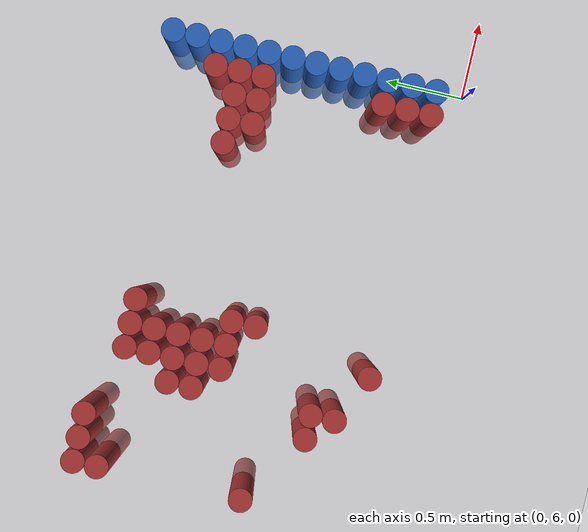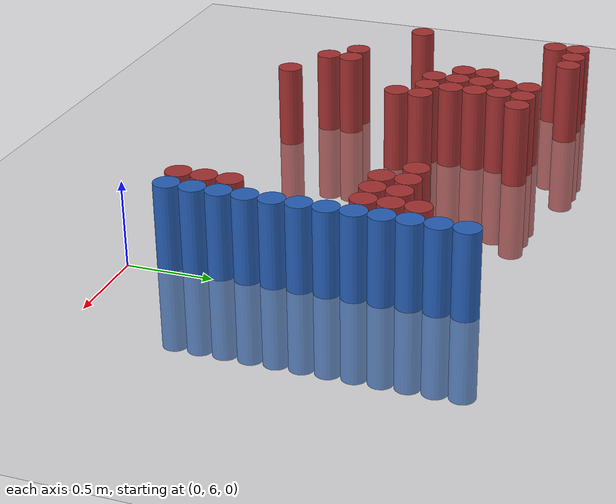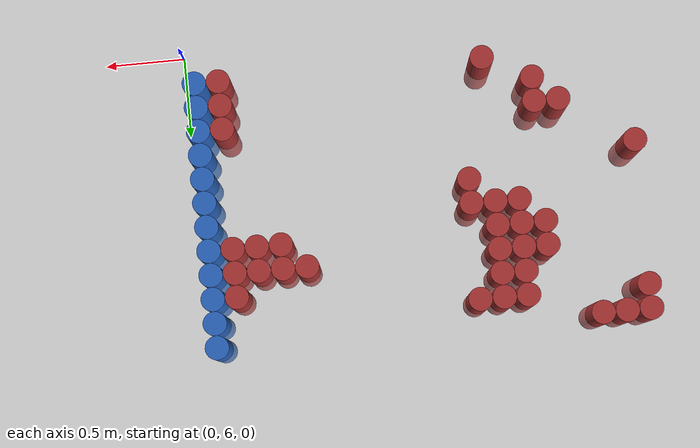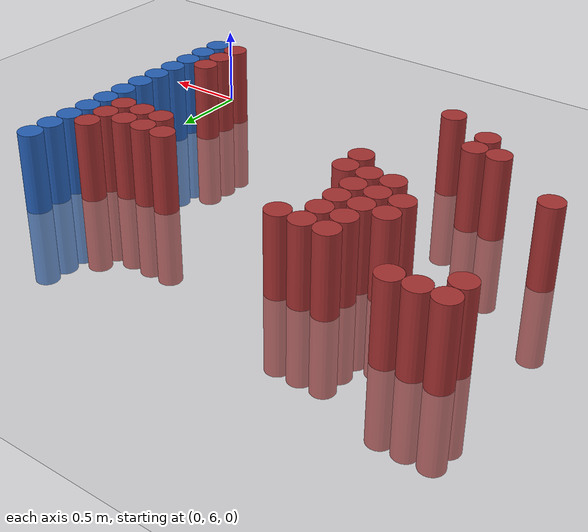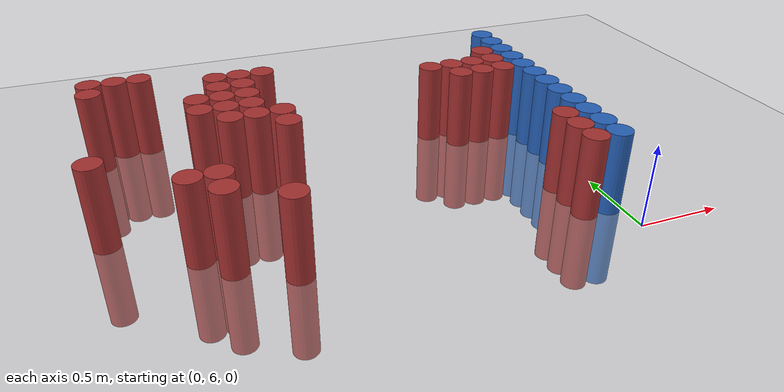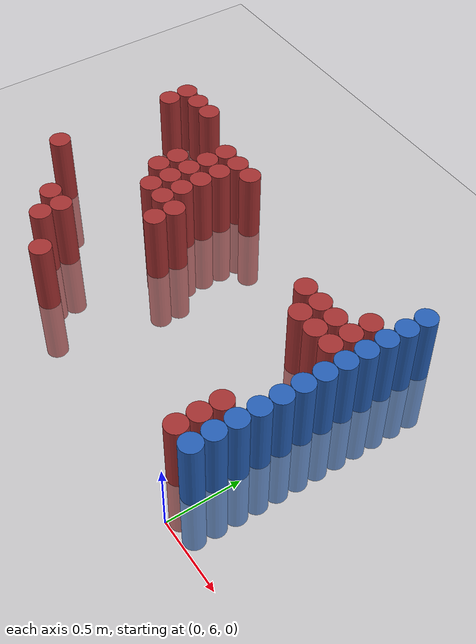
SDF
<sdf version="1.6">
 <world name="default">
  <model name="ground_plane">
   <static>1</static>
   <link name="link">
    <collision name="collision">
     <geometry><plane><normal>0 0 1</normal><size>100 100</size></plane></geometry>
     <surface><friction><ode><mu>100</mu><mu2>50</mu2></ode></friction></surface>
    </collision>
    <visual name="visual">
     <cast_shadows>0</cast_shadows>
     <geometry><plane><normal>0 0 1</normal><size>100 100</size></plane></geometry>
     <material>
      <script><uri>file://media/materials/scripts/gazebo.material</uri><name>Gazebo/Grey</name></script>
     </material>
    </visual>
   </link>
  </model>
  <model name="unit_cylinder_168">
   <static>1</static>
   <pose>-2.775000 6.825000 0.000000 0.000000 0.000000 0.000000</pose>
   <link name="link">
    <inertial>
     <mass>1</mass>
     <inertia><ixx>0.145833</ixx><ixy>0</ixy><ixz>0</ixz><iyy>0.145833</iyy><iyz>0</iyz><izz>0.125</izz></inertia>
    </inertial>
    <collision name="collision">
     <geometry><cylinder><radius>0.075000</radius><length>1</length></cylinder></geometry>
    </collision>
    <visual name="visual">
     <geometry><cylinder><radius>0.075000</radius><length>1</length></cylinder></geometry>
     <material>
      <ambient>0.648000 0.192000 0.192000 1</ambient>
      <diffuse>0.648000 0.192000 0.192000 1</diffuse>
     </material>
     <material>
      <script><name>Gazebo/Grey</name><uri>file://media/materials/scripts/gazebo.material</uri></script>
     </material>
    </visual>
   </link>
  </model>
  <model name="unit_cylinder_169">
   <static>1</static>
   <pose>-2.775000 7.725000 0.000000 0.000000 0.000000 0.000000</pose>
   <link name="link">
    <inertial>
     <mass>1</mass>
     <inertia><ixx>0.145833</ixx><ixy>0</ixy><ixz>0</ixz><iyy>0.145833</iyy><iyz>0</iyz><izz>0.125</izz></inertia>
    </inertial>
    <collision name="collision">
     <geometry><cylinder><radius>0.075000</radius><length>1</length></cylinder></geometry>
    </collision>
    <visual name="visual">
     <geometry><cylinder><radius>0.075000</radius><length>1</length></cylinder></geometry>
     <material>
      <ambient>0.648000 0.192000 0.192000 1</ambient>
      <diffuse>0.648000 0.192000 0.192000 1</diffuse>
     </material>
     <material>
      <script><name>Gazebo/Grey</name><uri>file://media/materials/scripts/gazebo.material</uri></script>
     </material>
    </visual>
   </link>
  </model>
  <model name="unit_cylinder_170">
   <static>1</static>
   <pose>-2.775000 7.875000 0.000000 0.000000 0.000000 0.000000</pose>
   <link name="link">
    <inertial>
     <mass>1</mass>
     <inertia><ixx>0.145833</ixx><ixy>0</ixy><ixz>0</ixz><iyy>0.145833</iyy><iyz>0</iyz><izz>0.125</izz></inertia>
    </inertial>
    <collision name="collision">
     <geometry><cylinder><radius>0.075000</radius><length>1</length></cylinder></geometry>
    </collision>
    <visual name="visual">
     <geometry><cylinder><radius>0.075000</radius><length>1</length></cylinder></geometry>
     <material>
      <ambient>0.648000 0.192000 0.192000 1</ambient>
      <diffuse>0.648000 0.192000 0.192000 1</diffuse>
     </material>
     <material>
      <script><name>Gazebo/Grey</name><uri>file://media/materials/scripts/gazebo.material</uri></script>
     </material>
    </visual>
   </link>
  </model>
  <model name="unit_cylinder_175">
   <static>1</static>
   <pose>-2.625000 7.875000 0.000000 0.000000 0.000000 0.000000</pose>
   <link name="link">
    <inertial>
     <mass>1</mass>
     <inertia><ixx>0.145833</ixx><ixy>0</ixy><ixz>0</ixz><iyy>0.145833</iyy><iyz>0</iyz><izz>0.125</izz></inertia>
    </inertial>
    <collision name="collision">
     <geometry><cylinder><radius>0.075000</radius><length>1</length></cylinder></geometry>
    </collision>
    <visual name="visual">
     <geometry><cylinder><radius>0.075000</radius><length>1</length></cylinder></geometry>
     <material>
      <ambient>0.648000 0.192000 0.192000 1</ambient>
      <diffuse>0.648000 0.192000 0.192000 1</diffuse>
     </material>
     <material>
      <script><name>Gazebo/Grey</name><uri>file://media/materials/scripts/gazebo.material</uri></script>
     </material>
    </visual>
   </link>
  </model>
  <model name="unit_cylinder_179">
   <static>1</static>
   <pose>-2.475000 7.875000 0.000000 0.000000 0.000000 0.000000</pose>
   <link name="link">
    <inertial>
     <mass>1</mass>
     <inertia><ixx>0.145833</ixx><ixy>0</ixy><ixz>0</ixz><iyy>0.145833</iyy><iyz>0</iyz><izz>0.125</izz></inertia>
    </inertial>
    <collision name="collision">
     <geometry><cylinder><radius>0.075000</radius><length>1</length></cylinder></geometry>
    </collision>
    <visual name="visual">
     <geometry><cylinder><radius>0.075000</radius><length>1</length></cylinder></geometry>
     <material>
      <ambient>0.648000 0.192000 0.192000 1</ambient>
      <diffuse>0.648000 0.192000 0.192000 1</diffuse>
     </material>
     <material>
      <script><name>Gazebo/Grey</name><uri>file://media/materials/scripts/gazebo.material</uri></script>
     </material>
    </visual>
   </link>
  </model>
  <model name="unit_cylinder_185">
   <static>1</static>
   <pose>-2.325000 6.525000 0.000000 0.000000 0.000000 0.000000</pose>
   <link name="link">
    <inertial>
     <mass>1</mass>
     <inertia><ixx>0.145833</ixx><ixy>0</ixy><ixz>0</ixz><iyy>0.145833</iyy><iyz>0</iyz><izz>0.125</izz></inertia>
    </inertial>
    <collision name="collision">
     <geometry><cylinder><radius>0.075000</radius><length>1</length></cylinder></geometry>
    </collision>
    <visual name="visual">
     <geometry><cylinder><radius>0.075000</radius><length>1</length></cylinder></geometry>
     <material>
      <ambient>0.648000 0.192000 0.192000 1</ambient>
      <diffuse>0.648000 0.192000 0.192000 1</diffuse>
     </material>
     <material>
      <script><name>Gazebo/Grey</name><uri>file://media/materials/scripts/gazebo.material</uri></script>
     </material>
    </visual>
   </link>
  </model>
  <model name="unit_cylinder_191">
   <static>1</static>
   <pose>-2.175000 6.375000 0.000000 0.000000 0.000000 0.000000</pose>
   <link name="link">
    <inertial>
     <mass>1</mass>
     <inertia><ixx>0.145833</ixx><ixy>0</ixy><ixz>0</ixz><iyy>0.145833</iyy><iyz>0</iyz><izz>0.125</izz></inertia>
    </inertial>
    <collision name="collision">
     <geometry><cylinder><radius>0.075000</radius><length>1</length></cylinder></geometry>
    </collision>
    <visual name="visual">
     <geometry><cylinder><radius>0.075000</radius><length>1</length></cylinder></geometry>
     <material>
      <ambient>0.648000 0.192000 0.192000 1</ambient>
      <diffuse>0.648000 0.192000 0.192000 1</diffuse>
     </material>
     <material>
      <script><name>Gazebo/Grey</name><uri>file://media/materials/scripts/gazebo.material</uri></script>
     </material>
    </visual>
   </link>
  </model>
  <model name="unit_cylinder_192">
   <static>1</static>
   <pose>-2.175000 6.525000 0.000000 0.000000 0.000000 0.000000</pose>
   <link name="link">
    <inertial>
     <mass>1</mass>
     <inertia><ixx>0.145833</ixx><ixy>0</ixy><ixz>0</ixz><iyy>0.145833</iyy><iyz>0</iyz><izz>0.125</izz></inertia>
    </inertial>
    <collision name="collision">
     <geometry><cylinder><radius>0.075000</radius><length>1</length></cylinder></geometry>
    </collision>
    <visual name="visual">
     <geometry><cylinder><radius>0.075000</radius><length>1</length></cylinder></geometry>
     <material>
      <ambient>0.648000 0.192000 0.192000 1</ambient>
      <diffuse>0.648000 0.192000 0.192000 1</diffuse>
     </material>
     <material>
      <script><name>Gazebo/Grey</name><uri>file://media/materials/scripts/gazebo.material</uri></script>
     </material>
    </visual>
   </link>
  </model>
  <model name="unit_cylinder_193">
   <static>1</static>
   <pose>-2.175000 7.275000 0.000000 0.000000 0.000000 0.000000</pose>
   <link name="link">
    <inertial>
     <mass>1</mass>
     <inertia><ixx>0.145833</ixx><ixy>0</ixy><ixz>0</ixz><iyy>0.145833</iyy><iyz>0</iyz><izz>0.125</izz></inertia>
    </inertial>
    <collision name="collision">
     <geometry><cylinder><radius>0.075000</radius><length>1</length></cylinder></geometry>
    </collision>
    <visual name="visual">
     <geometry><cylinder><radius>0.075000</radius><length>1</length></cylinder></geometry>
     <material>
      <ambient>0.648000 0.192000 0.192000 1</ambient>
      <diffuse>0.648000 0.192000 0.192000 1</diffuse>
     </material>
     <material>
      <script><name>Gazebo/Grey</name><uri>file://media/materials/scripts/gazebo.material</uri></script>
     </material>
    </visual>
   </link>
  </model>
  <model name="unit_cylinder_194">
   <static>1</static>
   <pose>-2.175000 7.425000 0.000000 0.000000 0.000000 0.000000</pose>
   <link name="link">
    <inertial>
     <mass>1</mass>
     <inertia><ixx>0.145833</ixx><ixy>0</ixy><ixz>0</ixz><iyy>0.145833</iyy><iyz>0</iyz><izz>0.125</izz></inertia>
    </inertial>
    <collision name="collision">
     <geometry><cylinder><radius>0.075000</radius><length>1</length></cylinder></geometry>
    </collision>
    <visual name="visual">
     <geometry><cylinder><radius>0.075000</radius><length>1</length></cylinder></geometry>
     <material>
      <ambient>0.648000 0.192000 0.192000 1</ambient>
      <diffuse>0.648000 0.192000 0.192000 1</diffuse>
     </material>
     <material>
      <script><name>Gazebo/Grey</name><uri>file://media/materials/scripts/gazebo.material</uri></script>
     </material>
    </visual>
   </link>
  </model>
  <model name="unit_cylinder_200">
   <static>1</static>
   <pose>-2.025000 7.125000 0.000000 0.000000 0.000000 0.000000</pose>
   <link name="link">
    <inertial>
     <mass>1</mass>
     <inertia><ixx>0.145833</ixx><ixy>0</ixy><ixz>0</ixz><iyy>0.145833</iyy><iyz>0</iyz><izz>0.125</izz></inertia>
    </inertial>
    <collision name="collision">
     <geometry><cylinder><radius>0.075000</radius><length>1</length></cylinder></geometry>
    </collision>
    <visual name="visual">
     <geometry><cylinder><radius>0.075000</radius><length>1</length></cylinder></geometry>
     <material>
      <ambient>0.648000 0.192000 0.192000 1</ambient>
      <diffuse>0.648000 0.192000 0.192000 1</diffuse>
     </material>
     <material>
      <script><name>Gazebo/Grey</name><uri>file://media/materials/scripts/gazebo.material</uri></script>
     </material>
    </visual>
   </link>
  </model>
  <model name="unit_cylinder_201">
   <static>1</static>
   <pose>-2.025000 7.275000 0.000000 0.000000 0.000000 0.000000</pose>
   <link name="link">
    <inertial>
     <mass>1</mass>
     <inertia><ixx>0.145833</ixx><ixy>0</ixy><ixz>0</ixz><iyy>0.145833</iyy><iyz>0</iyz><izz>0.125</izz></inertia>
    </inertial>
    <collision name="collision">
     <geometry><cylinder><radius>0.075000</radius><length>1</length></cylinder></geometry>
    </collision>
    <visual name="visual">
     <geometry><cylinder><radius>0.075000</radius><length>1</length></cylinder></geometry>
     <material>
      <ambient>0.648000 0.192000 0.192000 1</ambient>
      <diffuse>0.648000 0.192000 0.192000 1</diffuse>
     </material>
     <material>
      <script><name>Gazebo/Grey</name><uri>file://media/materials/scripts/gazebo.material</uri></script>
     </material>
    </visual>
   </link>
  </model>
  <model name="unit_cylinder_202">
   <static>1</static>
   <pose>-2.025000 7.425000 0.000000 0.000000 0.000000 0.000000</pose>
   <link name="link">
    <inertial>
     <mass>1</mass>
     <inertia><ixx>0.145833</ixx><ixy>0</ixy><ixz>0</ixz><iyy>0.145833</iyy><iyz>0</iyz><izz>0.125</izz></inertia>
    </inertial>
    <collision name="collision">
     <geometry><cylinder><radius>0.075000</radius><length>1</length></cylinder></geometry>
    </collision>
    <visual name="visual">
     <geometry><cylinder><radius>0.075000</radius><length>1</length></cylinder></geometry>
     <material>
      <ambient>0.648000 0.192000 0.192000 1</ambient>
      <diffuse>0.648000 0.192000 0.192000 1</diffuse>
     </material>
     <material>
      <script><name>Gazebo/Grey</name><uri>file://media/materials/scripts/gazebo.material</uri></script>
     </material>
    </visual>
   </link>
  </model>
  <model name="unit_cylinder_203">
   <static>1</static>
   <pose>-2.025000 7.575000 0.000000 0.000000 0.000000 0.000000</pose>
   <link name="link">
    <inertial>
     <mass>1</mass>
     <inertia><ixx>0.145833</ixx><ixy>0</ixy><ixz>0</ixz><iyy>0.145833</iyy><iyz>0</iyz><izz>0.125</izz></inertia>
    </inertial>
    <collision name="collision">
     <geometry><cylinder><radius>0.075000</radius><length>1</length></cylinder></geometry>
    </collision>
    <visual name="visual">
     <geometry><cylinder><radius>0.075000</radius><length>1</length></cylinder></geometry>
     <material>
      <ambient>0.648000 0.192000 0.192000 1</ambient>
      <diffuse>0.648000 0.192000 0.192000 1</diffuse>
     </material>
     <material>
      <script><name>Gazebo/Grey</name><uri>file://media/materials/scripts/gazebo.material</uri></script>
     </material>
    </visual>
   </link>
  </model>
  <model name="unit_cylinder_204">
   <static>1</static>
   <pose>-2.025000 7.725000 0.000000 0.000000 0.000000 0.000000</pose>
   <link name="link">
    <inertial>
     <mass>1</mass>
     <inertia><ixx>0.145833</ixx><ixy>0</ixy><ixz>0</ixz><iyy>0.145833</iyy><iyz>0</iyz><izz>0.125</izz></inertia>
    </inertial>
    <collision name="collision">
     <geometry><cylinder><radius>0.075000</radius><length>1</length></cylinder></geometry>
    </collision>
    <visual name="visual">
     <geometry><cylinder><radius>0.075000</radius><length>1</length></cylinder></geometry>
     <material>
      <ambient>0.648000 0.192000 0.192000 1</ambient>
      <diffuse>0.648000 0.192000 0.192000 1</diffuse>
     </material>
     <material>
      <script><name>Gazebo/Grey</name><uri>file://media/materials/scripts/gazebo.material</uri></script>
     </material>
    </visual>
   </link>
  </model>
  <model name="unit_cylinder_212">
   <static>1</static>
   <pose>-1.875000 6.225000 0.000000 0.000000 0.000000 0.000000</pose>
   <link name="link">
    <inertial>
     <mass>1</mass>
     <inertia><ixx>0.145833</ixx><ixy>0</ixy><ixz>0</ixz><iyy>0.145833</iyy><iyz>0</iyz><izz>0.125</izz></inertia>
    </inertial>
    <collision name="collision">
     <geometry><cylinder><radius>0.075000</radius><length>1</length></cylinder></geometry>
    </collision>
    <visual name="visual">
     <geometry><cylinder><radius>0.075000</radius><length>1</length></cylinder></geometry>
     <material>
      <ambient>0.648000 0.192000 0.192000 1</ambient>
      <diffuse>0.648000 0.192000 0.192000 1</diffuse>
     </material>
     <material>
      <script><name>Gazebo/Grey</name><uri>file://media/materials/scripts/gazebo.material</uri></script>
     </material>
    </visual>
   </link>
  </model>
  <model name="unit_cylinder_213">
   <static>1</static>
   <pose>-1.875000 7.125000 0.000000 0.000000 0.000000 0.000000</pose>
   <link name="link">
    <inertial>
     <mass>1</mass>
     <inertia><ixx>0.145833</ixx><ixy>0</ixy><ixz>0</ixz><iyy>0.145833</iyy><iyz>0</iyz><izz>0.125</izz></inertia>
    </inertial>
    <collision name="collision">
     <geometry><cylinder><radius>0.075000</radius><length>1</length></cylinder></geometry>
    </collision>
    <visual name="visual">
     <geometry><cylinder><radius>0.075000</radius><length>1</length></cylinder></geometry>
     <material>
      <ambient>0.648000 0.192000 0.192000 1</ambient>
      <diffuse>0.648000 0.192000 0.192000 1</diffuse>
     </material>
     <material>
      <script><name>Gazebo/Grey</name><uri>file://media/materials/scripts/gazebo.material</uri></script>
     </material>
    </visual>
   </link>
  </model>
  <model name="unit_cylinder_214">
   <static>1</static>
   <pose>-1.875000 7.275000 0.000000 0.000000 0.000000 0.000000</pose>
   <link name="link">
    <inertial>
     <mass>1</mass>
     <inertia><ixx>0.145833</ixx><ixy>0</ixy><ixz>0</ixz><iyy>0.145833</iyy><iyz>0</iyz><izz>0.125</izz></inertia>
    </inertial>
    <collision name="collision">
     <geometry><cylinder><radius>0.075000</radius><length>1</length></cylinder></geometry>
    </collision>
    <visual name="visual">
     <geometry><cylinder><radius>0.075000</radius><length>1</length></cylinder></geometry>
     <material>
      <ambient>0.648000 0.192000 0.192000 1</ambient>
      <diffuse>0.648000 0.192000 0.192000 1</diffuse>
     </material>
     <material>
      <script><name>Gazebo/Grey</name><uri>file://media/materials/scripts/gazebo.material</uri></script>
     </material>
    </visual>
   </link>
  </model>
  <model name="unit_cylinder_215">
   <static>1</static>
   <pose>-1.875000 7.425000 0.000000 0.000000 0.000000 0.000000</pose>
   <link name="link">
    <inertial>
     <mass>1</mass>
     <inertia><ixx>0.145833</ixx><ixy>0</ixy><ixz>0</ixz><iyy>0.145833</iyy><iyz>0</iyz><izz>0.125</izz></inertia>
    </inertial>
    <collision name="collision">
     <geometry><cylinder><radius>0.075000</radius><length>1</length></cylinder></geometry>
    </collision>
    <visual name="visual">
     <geometry><cylinder><radius>0.075000</radius><length>1</length></cylinder></geometry>
     <material>
      <ambient>0.648000 0.192000 0.192000 1</ambient>
      <diffuse>0.648000 0.192000 0.192000 1</diffuse>
     </material>
     <material>
      <script><name>Gazebo/Grey</name><uri>file://media/materials/scripts/gazebo.material</uri></script>
     </material>
    </visual>
   </link>
  </model>
  <model name="unit_cylinder_216">
   <static>1</static>
   <pose>-1.875000 7.575000 0.000000 0.000000 0.000000 0.000000</pose>
   <link name="link">
    <inertial>
     <mass>1</mass>
     <inertia><ixx>0.145833</ixx><ixy>0</ixy><ixz>0</ixz><iyy>0.145833</iyy><iyz>0</iyz><izz>0.125</izz></inertia>
    </inertial>
    <collision name="collision">
     <geometry><cylinder><radius>0.075000</radius><length>1</length></cylinder></geometry>
    </collision>
    <visual name="visual">
     <geometry><cylinder><radius>0.075000</radius><length>1</length></cylinder></geometry>
     <material>
      <ambient>0.648000 0.192000 0.192000 1</ambient>
      <diffuse>0.648000 0.192000 0.192000 1</diffuse>
     </material>
     <material>
      <script><name>Gazebo/Grey</name><uri>file://media/materials/scripts/gazebo.material</uri></script>
     </material>
    </visual>
   </link>
  </model>
  <model name="unit_cylinder_217">
   <static>1</static>
   <pose>-1.875000 7.725000 0.000000 0.000000 0.000000 0.000000</pose>
   <link name="link">
    <inertial>
     <mass>1</mass>
     <inertia><ixx>0.145833</ixx><ixy>0</ixy><ixz>0</ixz><iyy>0.145833</iyy><iyz>0</iyz><izz>0.125</izz></inertia>
    </inertial>
    <collision name="collision">
     <geometry><cylinder><radius>0.075000</radius><length>1</length></cylinder></geometry>
    </collision>
    <visual name="visual">
     <geometry><cylinder><radius>0.075000</radius><length>1</length></cylinder></geometry>
     <material>
      <ambient>0.648000 0.192000 0.192000 1</ambient>
      <diffuse>0.648000 0.192000 0.192000 1</diffuse>
     </material>
     <material>
      <script><name>Gazebo/Grey</name><uri>file://media/materials/scripts/gazebo.material</uri></script>
     </material>
    </visual>
   </link>
  </model>
  <model name="unit_cylinder_224">
   <static>1</static>
   <pose>-1.725000 6.975000 0.000000 0.000000 0.000000 0.000000</pose>
   <link name="link">
    <inertial>
     <mass>1</mass>
     <inertia><ixx>0.145833</ixx><ixy>0</ixy><ixz>0</ixz><iyy>0.145833</iyy><iyz>0</iyz><izz>0.125</izz></inertia>
    </inertial>
    <collision name="collision">
     <geometry><cylinder><radius>0.075000</radius><length>1</length></cylinder></geometry>
    </collision>
    <visual name="visual">
     <geometry><cylinder><radius>0.075000</radius><length>1</length></cylinder></geometry>
     <material>
      <ambient>0.648000 0.192000 0.192000 1</ambient>
      <diffuse>0.648000 0.192000 0.192000 1</diffuse>
     </material>
     <material>
      <script><name>Gazebo/Grey</name><uri>file://media/materials/scripts/gazebo.material</uri></script>
     </material>
    </visual>
   </link>
  </model>
  <model name="unit_cylinder_225">
   <static>1</static>
   <pose>-1.725000 7.125000 0.000000 0.000000 0.000000 0.000000</pose>
   <link name="link">
    <inertial>
     <mass>1</mass>
     <inertia><ixx>0.145833</ixx><ixy>0</ixy><ixz>0</ixz><iyy>0.145833</iyy><iyz>0</iyz><izz>0.125</izz></inertia>
    </inertial>
    <collision name="collision">
     <geometry><cylinder><radius>0.075000</radius><length>1</length></cylinder></geometry>
    </collision>
    <visual name="visual">
     <geometry><cylinder><radius>0.075000</radius><length>1</length></cylinder></geometry>
     <material>
      <ambient>0.648000 0.192000 0.192000 1</ambient>
      <diffuse>0.648000 0.192000 0.192000 1</diffuse>
     </material>
     <material>
      <script><name>Gazebo/Grey</name><uri>file://media/materials/scripts/gazebo.material</uri></script>
     </material>
    </visual>
   </link>
  </model>
  <model name="unit_cylinder_226">
   <static>1</static>
   <pose>-1.725000 7.725000 0.000000 0.000000 0.000000 0.000000</pose>
   <link name="link">
    <inertial>
     <mass>1</mass>
     <inertia><ixx>0.145833</ixx><ixy>0</ixy><ixz>0</ixz><iyy>0.145833</iyy><iyz>0</iyz><izz>0.125</izz></inertia>
    </inertial>
    <collision name="collision">
     <geometry><cylinder><radius>0.075000</radius><length>1</length></cylinder></geometry>
    </collision>
    <visual name="visual">
     <geometry><cylinder><radius>0.075000</radius><length>1</length></cylinder></geometry>
     <material>
      <ambient>0.648000 0.192000 0.192000 1</ambient>
      <diffuse>0.648000 0.192000 0.192000 1</diffuse>
     </material>
     <material>
      <script><name>Gazebo/Grey</name><uri>file://media/materials/scripts/gazebo.material</uri></script>
     </material>
    </visual>
   </link>
  </model>
  <model name="unit_cylinder_237">
   <static>1</static>
   <pose>-0.675000 7.425000 0.000000 0.000000 0.000000 0.000000</pose>
   <link name="link">
    <inertial>
     <mass>1</mass>
     <inertia><ixx>0.145833</ixx><ixy>0</ixy><ixz>0</ixz><iyy>0.145833</iyy><iyz>0</iyz><izz>0.125</izz></inertia>
    </inertial>
    <collision name="collision">
     <geometry><cylinder><radius>0.075000</radius><length>1</length></cylinder></geometry>
    </collision>
    <visual name="visual">
     <geometry><cylinder><radius>0.075000</radius><length>1</length></cylinder></geometry>
     <material>
      <ambient>0.648000 0.192000 0.192000 1</ambient>
      <diffuse>0.648000 0.192000 0.192000 1</diffuse>
     </material>
     <material>
      <script><name>Gazebo/Grey</name><uri>file://media/materials/scripts/gazebo.material</uri></script>
     </material>
    </visual>
   </link>
  </model>
  <model name="unit_cylinder_238">
   <static>1</static>
   <pose>-0.525000 7.275000 0.000000 0.000000 0.000000 0.000000</pose>
   <link name="link">
    <inertial>
     <mass>1</mass>
     <inertia><ixx>0.145833</ixx><ixy>0</ixy><ixz>0</ixz><iyy>0.145833</iyy><iyz>0</iyz><izz>0.125</izz></inertia>
    </inertial>
    <collision name="collision">
     <geometry><cylinder><radius>0.075000</radius><length>1</length></cylinder></geometry>
    </collision>
    <visual name="visual">
     <geometry><cylinder><radius>0.075000</radius><length>1</length></cylinder></geometry>
     <material>
      <ambient>0.648000 0.192000 0.192000 1</ambient>
      <diffuse>0.648000 0.192000 0.192000 1</diffuse>
     </material>
     <material>
      <script><name>Gazebo/Grey</name><uri>file://media/materials/scripts/gazebo.material</uri></script>
     </material>
    </visual>
   </link>
  </model>
  <model name="unit_cylinder_239">
   <static>1</static>
   <pose>-0.525000 7.425000 0.000000 0.000000 0.000000 0.000000</pose>
   <link name="link">
    <inertial>
     <mass>1</mass>
     <inertia><ixx>0.145833</ixx><ixy>0</ixy><ixz>0</ixz><iyy>0.145833</iyy><iyz>0</iyz><izz>0.125</izz></inertia>
    </inertial>
    <collision name="collision">
     <geometry><cylinder><radius>0.075000</radius><length>1</length></cylinder></geometry>
    </collision>
    <visual name="visual">
     <geometry><cylinder><radius>0.075000</radius><length>1</length></cylinder></geometry>
     <material>
      <ambient>0.648000 0.192000 0.192000 1</ambient>
      <diffuse>0.648000 0.192000 0.192000 1</diffuse>
     </material>
     <material>
      <script><name>Gazebo/Grey</name><uri>file://media/materials/scripts/gazebo.material</uri></script>
     </material>
    </visual>
   </link>
  </model>
  <model name="unit_cylinder_240">
   <static>1</static>
   <pose>-0.375000 7.275000 0.000000 0.000000 0.000000 0.000000</pose>
   <link name="link">
    <inertial>
     <mass>1</mass>
     <inertia><ixx>0.145833</ixx><ixy>0</ixy><ixz>0</ixz><iyy>0.145833</iyy><iyz>0</iyz><izz>0.125</izz></inertia>
    </inertial>
    <collision name="collision">
     <geometry><cylinder><radius>0.075000</radius><length>1</length></cylinder></geometry>
    </collision>
    <visual name="visual">
     <geometry><cylinder><radius>0.075000</radius><length>1</length></cylinder></geometry>
     <material>
      <ambient>0.648000 0.192000 0.192000 1</ambient>
      <diffuse>0.648000 0.192000 0.192000 1</diffuse>
     </material>
     <material>
      <script><name>Gazebo/Grey</name><uri>file://media/materials/scripts/gazebo.material</uri></script>
     </material>
    </visual>
   </link>
  </model>
  <model name="unit_cylinder_241">
   <static>1</static>
   <pose>-0.375000 7.425000 0.000000 0.000000 0.000000 0.000000</pose>
   <link name="link">
    <inertial>
     <mass>1</mass>
     <inertia><ixx>0.145833</ixx><ixy>0</ixy><ixz>0</ixz><iyy>0.145833</iyy><iyz>0</iyz><izz>0.125</izz></inertia>
    </inertial>
    <collision name="collision">
     <geometry><cylinder><radius>0.075000</radius><length>1</length></cylinder></geometry>
    </collision>
    <visual name="visual">
     <geometry><cylinder><radius>0.075000</radius><length>1</length></cylinder></geometry>
     <material>
      <ambient>0.648000 0.192000 0.192000 1</ambient>
      <diffuse>0.648000 0.192000 0.192000 1</diffuse>
     </material>
     <material>
      <script><name>Gazebo/Grey</name><uri>file://media/materials/scripts/gazebo.material</uri></script>
     </material>
    </visual>
   </link>
  </model>
  <model name="unit_cylinder_244">
   <static>1</static>
   <pose>-0.225000 6.225000 0.000000 0.000000 0.000000 0.000000</pose>
   <link name="link">
    <inertial>
     <mass>1</mass>
     <inertia><ixx>0.145833</ixx><ixy>0</ixy><ixz>0</ixz><iyy>0.145833</iyy><iyz>0</iyz><izz>0.125</izz></inertia>
    </inertial>
    <collision name="collision">
     <geometry><cylinder><radius>0.075000</radius><length>1</length></cylinder></geometry>
    </collision>
    <visual name="visual">
     <geometry><cylinder><radius>0.075000</radius><length>1</length></cylinder></geometry>
     <material>
      <ambient>0.648000 0.192000 0.192000 1</ambient>
      <diffuse>0.648000 0.192000 0.192000 1</diffuse>
     </material>
     <material>
      <script><name>Gazebo/Grey</name><uri>file://media/materials/scripts/gazebo.material</uri></script>
     </material>
    </visual>
   </link>
  </model>
  <model name="unit_cylinder_245">
   <static>1</static>
   <pose>-0.225000 6.375000 0.000000 0.000000 0.000000 0.000000</pose>
   <link name="link">
    <inertial>
     <mass>1</mass>
     <inertia><ixx>0.145833</ixx><ixy>0</ixy><ixz>0</ixz><iyy>0.145833</iyy><iyz>0</iyz><izz>0.125</izz></inertia>
    </inertial>
    <collision name="collision">
     <geometry><cylinder><radius>0.075000</radius><length>1</length></cylinder></geometry>
    </collision>
    <visual name="visual">
     <geometry><cylinder><radius>0.075000</radius><length>1</length></cylinder></geometry>
     <material>
      <ambient>0.648000 0.192000 0.192000 1</ambient>
      <diffuse>0.648000 0.192000 0.192000 1</diffuse>
     </material>
     <material>
      <script><name>Gazebo/Grey</name><uri>file://media/materials/scripts/gazebo.material</uri></script>
     </material>
    </visual>
   </link>
  </model>
  <model name="unit_cylinder_246">
   <static>1</static>
   <pose>-0.225000 6.525000 0.000000 0.000000 0.000000 0.000000</pose>
   <link name="link">
    <inertial>
     <mass>1</mass>
     <inertia><ixx>0.145833</ixx><ixy>0</ixy><ixz>0</ixz><iyy>0.145833</iyy><iyz>0</iyz><izz>0.125</izz></inertia>
    </inertial>
    <collision name="collision">
     <geometry><cylinder><radius>0.075000</radius><length>1</length></cylinder></geometry>
    </collision>
    <visual name="visual">
     <geometry><cylinder><radius>0.075000</radius><length>1</length></cylinder></geometry>
     <material>
      <ambient>0.648000 0.192000 0.192000 1</ambient>
      <diffuse>0.648000 0.192000 0.192000 1</diffuse>
     </material>
     <material>
      <script><name>Gazebo/Grey</name><uri>file://media/materials/scripts/gazebo.material</uri></script>
     </material>
    </visual>
   </link>
  </model>
  <model name="unit_cylinder_247">
   <static>1</static>
   <pose>-0.225000 7.275000 0.000000 0.000000 0.000000 0.000000</pose>
   <link name="link">
    <inertial>
     <mass>1</mass>
     <inertia><ixx>0.145833</ixx><ixy>0</ixy><ixz>0</ixz><iyy>0.145833</iyy><iyz>0</iyz><izz>0.125</izz></inertia>
    </inertial>
    <collision name="collision">
     <geometry><cylinder><radius>0.075000</radius><length>1</length></cylinder></geometry>
    </collision>
    <visual name="visual">
     <geometry><cylinder><radius>0.075000</radius><length>1</length></cylinder></geometry>
     <material>
      <ambient>0.648000 0.192000 0.192000 1</ambient>
      <diffuse>0.648000 0.192000 0.192000 1</diffuse>
     </material>
     <material>
      <script><name>Gazebo/Grey</name><uri>file://media/materials/scripts/gazebo.material</uri></script>
     </material>
    </visual>
   </link>
  </model>
  <model name="unit_cylinder_248">
   <static>1</static>
   <pose>-0.225000 7.425000 0.000000 0.000000 0.000000 0.000000</pose>
   <link name="link">
    <inertial>
     <mass>1</mass>
     <inertia><ixx>0.145833</ixx><ixy>0</ixy><ixz>0</ixz><iyy>0.145833</iyy><iyz>0</iyz><izz>0.125</izz></inertia>
    </inertial>
    <collision name="collision">
     <geometry><cylinder><radius>0.075000</radius><length>1</length></cylinder></geometry>
    </collision>
    <visual name="visual">
     <geometry><cylinder><radius>0.075000</radius><length>1</length></cylinder></geometry>
     <material>
      <ambient>0.648000 0.192000 0.192000 1</ambient>
      <diffuse>0.648000 0.192000 0.192000 1</diffuse>
     </material>
     <material>
      <script><name>Gazebo/Grey</name><uri>file://media/materials/scripts/gazebo.material</uri></script>
     </material>
    </visual>
   </link>
  </model>
  <model name="unit_cylinder_249">
   <static>1</static>
   <pose>-0.225000 7.575000 0.000000 0.000000 0.000000 0.000000</pose>
   <link name="link">
    <inertial>
     <mass>1</mass>
     <inertia><ixx>0.145833</ixx><ixy>0</ixy><ixz>0</ixz><iyy>0.145833</iyy><iyz>0</iyz><izz>0.125</izz></inertia>
    </inertial>
    <collision name="collision">
     <geometry><cylinder><radius>0.075000</radius><length>1</length></cylinder></geometry>
    </collision>
    <visual name="visual">
     <geometry><cylinder><radius>0.075000</radius><length>1</length></cylinder></geometry>
     <material>
      <ambient>0.648000 0.192000 0.192000 1</ambient>
      <diffuse>0.648000 0.192000 0.192000 1</diffuse>
     </material>
     <material>
      <script><name>Gazebo/Grey</name><uri>file://media/materials/scripts/gazebo.material</uri></script>
     </material>
    </visual>
   </link>
  </model>
  <model name="unit_cylinder_263">
   <static>1</static>
   <pose>-0.075000 6.225000 0.000000 0.000000 0.000000 0.000000</pose>
   <link name="link">
    <inertial>
     <mass>1</mass>
     <inertia><ixx>0.145833</ixx><ixy>0</ixy><ixz>0</ixz><iyy>0.145833</iyy><iyz>0</iyz><izz>0.125</izz></inertia>
    </inertial>
    <collision name="collision">
     <geometry><cylinder><radius>0.075000</radius><length>1</length></cylinder></geometry>
    </collision>
    <visual name="visual">
     <geometry><cylinder><radius>0.075000</radius><length>1</length></cylinder></geometry>
     <material>
      <ambient>0.152000 0.379000 0.720000 1</ambient>
      <diffuse>0.152000 0.379000 0.720000 1</diffuse>
     </material>
     <material>
      <script><name>Gazebo/Grey</name><uri>file://media/materials/scripts/gazebo.material</uri></script>
     </material>
    </visual>
   </link>
  </model>
  <model name="unit_cylinder_264">
   <static>1</static>
   <pose>-0.075000 6.375000 0.000000 0.000000 0.000000 0.000000</pose>
   <link name="link">
    <inertial>
     <mass>1</mass>
     <inertia><ixx>0.145833</ixx><ixy>0</ixy><ixz>0</ixz><iyy>0.145833</iyy><iyz>0</iyz><izz>0.125</izz></inertia>
    </inertial>
    <collision name="collision">
     <geometry><cylinder><radius>0.075000</radius><length>1</length></cylinder></geometry>
    </collision>
    <visual name="visual">
     <geometry><cylinder><radius>0.075000</radius><length>1</length></cylinder></geometry>
     <material>
      <ambient>0.152000 0.379000 0.720000 1</ambient>
      <diffuse>0.152000 0.379000 0.720000 1</diffuse>
     </material>
     <material>
      <script><name>Gazebo/Grey</name><uri>file://media/materials/scripts/gazebo.material</uri></script>
     </material>
    </visual>
   </link>
  </model>
  <model name="unit_cylinder_265">
   <static>1</static>
   <pose>-0.075000 6.525000 0.000000 0.000000 0.000000 0.000000</pose>
   <link name="link">
    <inertial>
     <mass>1</mass>
     <inertia><ixx>0.145833</ixx><ixy>0</ixy><ixz>0</ixz><iyy>0.145833</iyy><iyz>0</iyz><izz>0.125</izz></inertia>
    </inertial>
    <collision name="collision">
     <geometry><cylinder><radius>0.075000</radius><length>1</length></cylinder></geometry>
    </collision>
    <visual name="visual">
     <geometry><cylinder><radius>0.075000</radius><length>1</length></cylinder></geometry>
     <material>
      <ambient>0.152000 0.379000 0.720000 1</ambient>
      <diffuse>0.152000 0.379000 0.720000 1</diffuse>
     </material>
     <material>
      <script><name>Gazebo/Grey</name><uri>file://media/materials/scripts/gazebo.material</uri></script>
     </material>
    </visual>
   </link>
  </model>
  <model name="unit_cylinder_266">
   <static>1</static>
   <pose>-0.075000 6.675000 0.000000 0.000000 0.000000 0.000000</pose>
   <link name="link">
    <inertial>
     <mass>1</mass>
     <inertia><ixx>0.145833</ixx><ixy>0</ixy><ixz>0</ixz><iyy>0.145833</iyy><iyz>0</iyz><izz>0.125</izz></inertia>
    </inertial>
    <collision name="collision">
     <geometry><cylinder><radius>0.075000</radius><length>1</length></cylinder></geometry>
    </collision>
    <visual name="visual">
     <geometry><cylinder><radius>0.075000</radius><length>1</length></cylinder></geometry>
     <material>
      <ambient>0.152000 0.379000 0.720000 1</ambient>
      <diffuse>0.152000 0.379000 0.720000 1</diffuse>
     </material>
     <material>
      <script><name>Gazebo/Grey</name><uri>file://media/materials/scripts/gazebo.material</uri></script>
     </material>
    </visual>
   </link>
  </model>
  <model name="unit_cylinder_267">
   <static>1</static>
   <pose>-0.075000 6.825000 0.000000 0.000000 0.000000 0.000000</pose>
   <link name="link">
    <inertial>
     <mass>1</mass>
     <inertia><ixx>0.145833</ixx><ixy>0</ixy><ixz>0</ixz><iyy>0.145833</iyy><iyz>0</iyz><izz>0.125</izz></inertia>
    </inertial>
    <collision name="collision">
     <geometry><cylinder><radius>0.075000</radius><length>1</length></cylinder></geometry>
    </collision>
    <visual name="visual">
     <geometry><cylinder><radius>0.075000</radius><length>1</length></cylinder></geometry>
     <material>
      <ambient>0.152000 0.379000 0.720000 1</ambient>
      <diffuse>0.152000 0.379000 0.720000 1</diffuse>
     </material>
     <material>
      <script><name>Gazebo/Grey</name><uri>file://media/materials/scripts/gazebo.material</uri></script>
     </material>
    </visual>
   </link>
  </model>
  <model name="unit_cylinder_268">
   <static>1</static>
   <pose>-0.075000 6.975000 0.000000 0.000000 0.000000 0.000000</pose>
   <link name="link">
    <inertial>
     <mass>1</mass>
     <inertia><ixx>0.145833</ixx><ixy>0</ixy><ixz>0</ixz><iyy>0.145833</iyy><iyz>0</iyz><izz>0.125</izz></inertia>
    </inertial>
    <collision name="collision">
     <geometry><cylinder><radius>0.075000</radius><length>1</length></cylinder></geometry>
    </collision>
    <visual name="visual">
     <geometry><cylinder><radius>0.075000</radius><length>1</length></cylinder></geometry>
     <material>
      <ambient>0.152000 0.379000 0.720000 1</ambient>
      <diffuse>0.152000 0.379000 0.720000 1</diffuse>
     </material>
     <material>
      <script><name>Gazebo/Grey</name><uri>file://media/materials/scripts/gazebo.material</uri></script>
     </material>
    </visual>
   </link>
  </model>
  <model name="unit_cylinder_269">
   <static>1</static>
   <pose>-0.075000 7.125000 0.000000 0.000000 0.000000 0.000000</pose>
   <link name="link">
    <inertial>
     <mass>1</mass>
     <inertia><ixx>0.145833</ixx><ixy>0</ixy><ixz>0</ixz><iyy>0.145833</iyy><iyz>0</iyz><izz>0.125</izz></inertia>
    </inertial>
    <collision name="collision">
     <geometry><cylinder><radius>0.075000</radius><length>1</length></cylinder></geometry>
    </collision>
    <visual name="visual">
     <geometry><cylinder><radius>0.075000</radius><length>1</length></cylinder></geometry>
     <material>
      <ambient>0.152000 0.379000 0.720000 1</ambient>
      <diffuse>0.152000 0.379000 0.720000 1</diffuse>
     </material>
     <material>
      <script><name>Gazebo/Grey</name><uri>file://media/materials/scripts/gazebo.material</uri></script>
     </material>
    </visual>
   </link>
  </model>
  <model name="unit_cylinder_270">
   <static>1</static>
   <pose>-0.075000 7.275000 0.000000 0.000000 0.000000 0.000000</pose>
   <link name="link">
    <inertial>
     <mass>1</mass>
     <inertia><ixx>0.145833</ixx><ixy>0</ixy><ixz>0</ixz><iyy>0.145833</iyy><iyz>0</iyz><izz>0.125</izz></inertia>
    </inertial>
    <collision name="collision">
     <geometry><cylinder><radius>0.075000</radius><length>1</length></cylinder></geometry>
    </collision>
    <visual name="visual">
     <geometry><cylinder><radius>0.075000</radius><length>1</length></cylinder></geometry>
     <material>
      <ambient>0.152000 0.379000 0.720000 1</ambient>
      <diffuse>0.152000 0.379000 0.720000 1</diffuse>
     </material>
     <material>
      <script><name>Gazebo/Grey</name><uri>file://media/materials/scripts/gazebo.material</uri></script>
     </material>
    </visual>
   </link>
  </model>
  <model name="unit_cylinder_271">
   <static>1</static>
   <pose>-0.075000 7.425000 0.000000 0.000000 0.000000 0.000000</pose>
   <link name="link">
    <inertial>
     <mass>1</mass>
     <inertia><ixx>0.145833</ixx><ixy>0</ixy><ixz>0</ixz><iyy>0.145833</iyy><iyz>0</iyz><izz>0.125</izz></inertia>
    </inertial>
    <collision name="collision">
     <geometry><cylinder><radius>0.075000</radius><length>1</length></cylinder></geometry>
    </collision>
    <visual name="visual">
     <geometry><cylinder><radius>0.075000</radius><length>1</length></cylinder></geometry>
     <material>
      <ambient>0.152000 0.379000 0.720000 1</ambient>
      <diffuse>0.152000 0.379000 0.720000 1</diffuse>
     </material>
     <material>
      <script><name>Gazebo/Grey</name><uri>file://media/materials/scripts/gazebo.material</uri></script>
     </material>
    </visual>
   </link>
  </model>
  <model name="unit_cylinder_272">
   <static>1</static>
   <pose>-0.075000 7.575000 0.000000 0.000000 0.000000 0.000000</pose>
   <link name="link">
    <inertial>
     <mass>1</mass>
     <inertia><ixx>0.145833</ixx><ixy>0</ixy><ixz>0</ixz><iyy>0.145833</iyy><iyz>0</iyz><izz>0.125</izz></inertia>
    </inertial>
    <collision name="collision">
     <geometry><cylinder><radius>0.075000</radius><length>1</length></cylinder></geometry>
    </collision>
    <visual name="visual">
     <geometry><cylinder><radius>0.075000</radius><length>1</length></cylinder></geometry>
     <material>
      <ambient>0.152000 0.379000 0.720000 1</ambient>
      <diffuse>0.152000 0.379000 0.720000 1</diffuse>
     </material>
     <material>
      <script><name>Gazebo/Grey</name><uri>file://media/materials/scripts/gazebo.material</uri></script>
     </material>
    </visual>
   </link>
  </model>
  <model name="unit_cylinder_273">
   <static>1</static>
   <pose>-0.075000 7.725000 0.000000 0.000000 0.000000 0.000000</pose>
   <link name="link">
    <inertial>
     <mass>1</mass>
     <inertia><ixx>0.145833</ixx><ixy>0</ixy><ixz>0</ixz><iyy>0.145833</iyy><iyz>0</iyz><izz>0.125</izz></inertia>
    </inertial>
    <collision name="collision">
     <geometry><cylinder><radius>0.075000</radius><length>1</length></cylinder></geometry>
    </collision>
    <visual name="visual">
     <geometry><cylinder><radius>0.075000</radius><length>1</length></cylinder></geometry>
     <material>
      <ambient>0.152000 0.379000 0.720000 1</ambient>
      <diffuse>0.152000 0.379000 0.720000 1</diffuse>
     </material>
     <material>
      <script><name>Gazebo/Grey</name><uri>file://media/materials/scripts/gazebo.material</uri></script>
     </material>
    </visual>
   </link>
  </model>
  <model name="unit_cylinder_274">
   <static>1</static>
   <pose>-0.075000 7.875000 0.000000 0.000000 0.000000 0.000000</pose>
   <link name="link">
    <inertial>
     <mass>1</mass>
     <inertia><ixx>0.145833</ixx><ixy>0</ixy><ixz>0</ixz><iyy>0.145833</iyy><iyz>0</iyz><izz>0.125</izz></inertia>
    </inertial>
    <collision name="collision">
     <geometry><cylinder><radius>0.075000</radius><length>1</length></cylinder></geometry>
    </collision>
    <visual name="visual">
     <geometry><cylinder><radius>0.075000</radius><length>1</length></cylinder></geometry>
     <material>
      <ambient>0.152000 0.379000 0.720000 1</ambient>
      <diffuse>0.152000 0.379000 0.720000 1</diffuse>
     </material>
     <material>
      <script><name>Gazebo/Grey</name><uri>file://media/materials/scripts/gazebo.material</uri></script>
     </material>
    </visual>
   </link>
  </model>
 </world>
</sdf>
